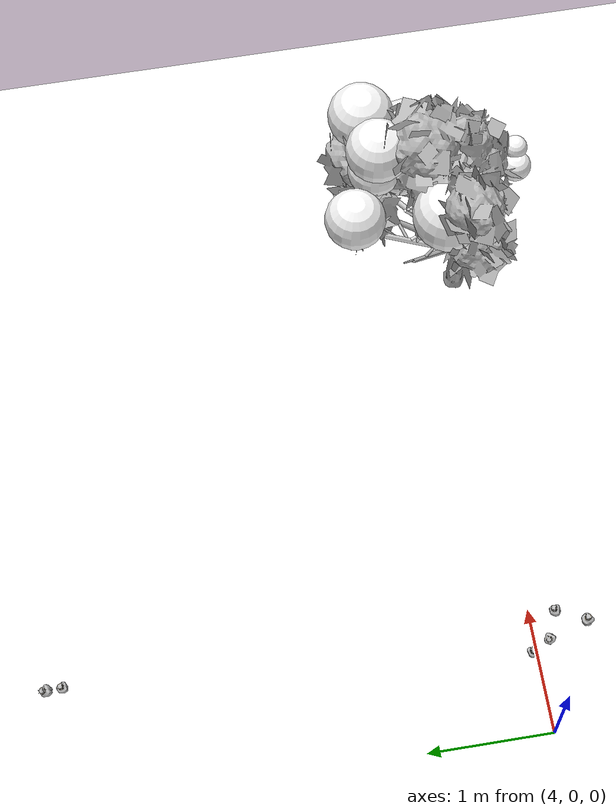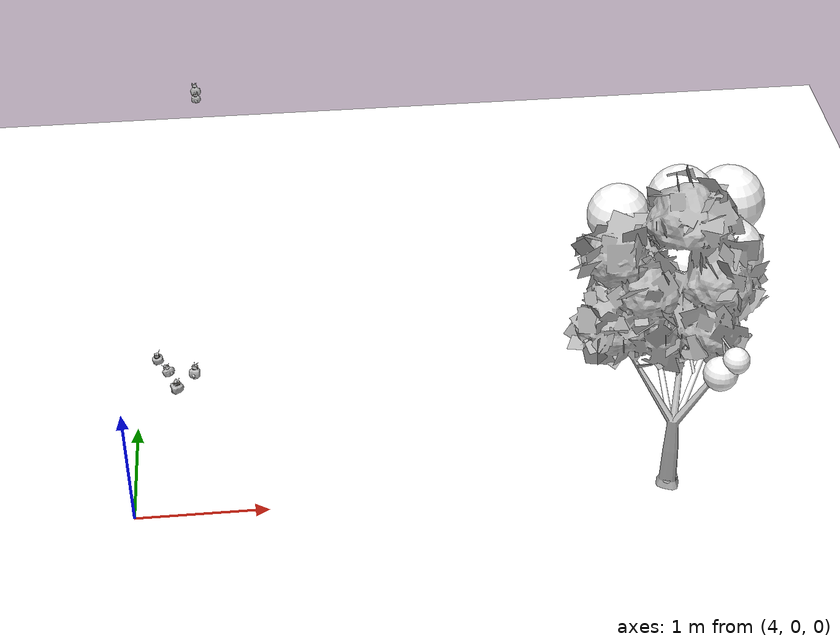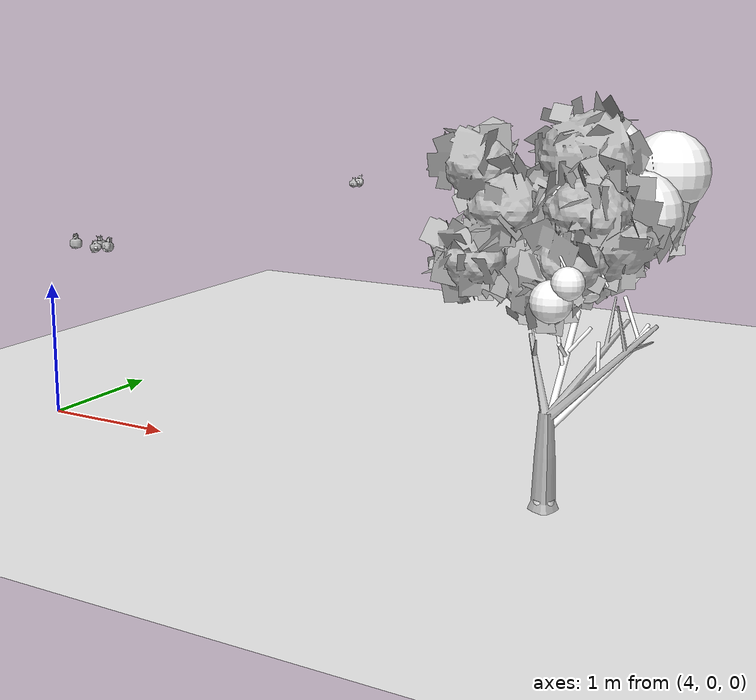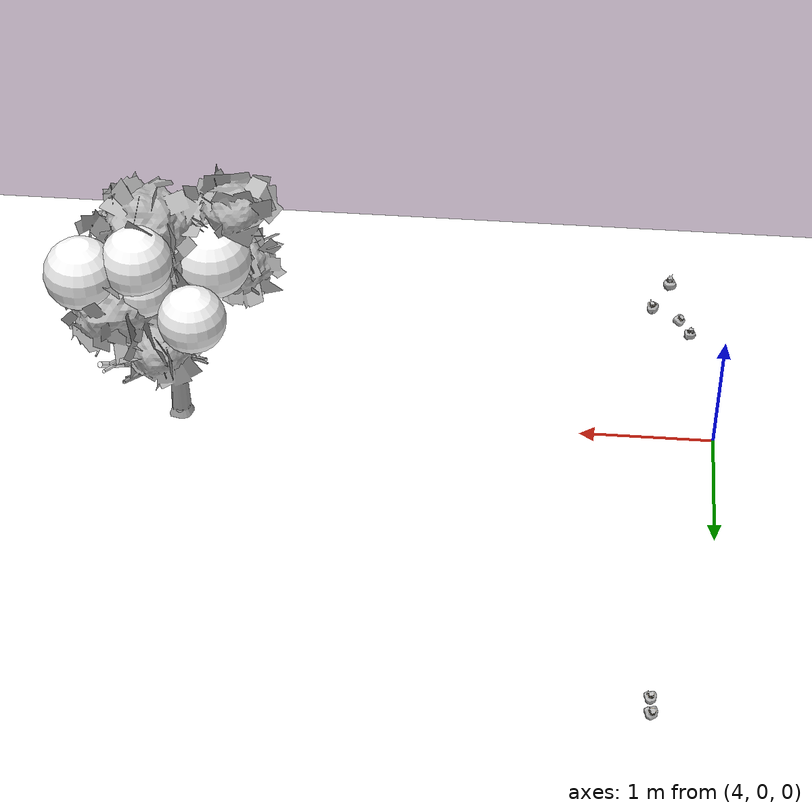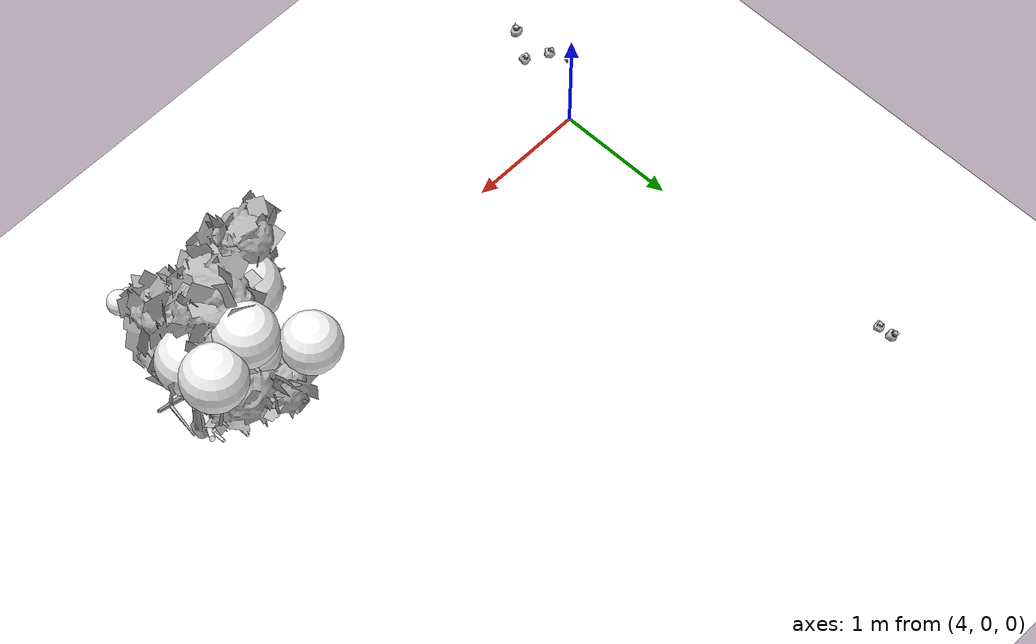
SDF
<sdf version="1.11">
 <world name="peach_orchard">
  <model name="ground">
   <static>true</static>
   <link name="link">
    <visual name="soil">
     <geometry><plane><normal>0 0 1</normal><size>32 22</size></plane></geometry>
     <material>
      <ambient>1 1 1 1</ambient>
      <diffuse>1 1 1 1</diffuse>
      <specular>0.1 0.1 0.1 1</specular>
      <pbr>
       <metal>
        <albedo_map>textures/soil_albedo.png</albedo_map>
        <normal_map type="tangent">textures/soil_normal.png</normal_map>
        <roughness>0.95</roughness>
        <metalness>0</metalness>
       </metal>
      </pbr>
     </material>
    </visual>
    <collision name="c_soil">
     <geometry><plane><normal>0 0 1</normal><size>32 22</size></plane></geometry>
    </collision>
   </link>
  </model>
  <model name="tree_r4_t3">
   <pose>8 0 0 0 0 0</pose>
   <static>true</static>
   <link name="link">
    <visual name="tree_mesh">
     <pose>0 0 0 0 0 -0.282203</pose>
     <geometry>
      <mesh><uri>model://peach_sim/meshes/peach_tree_b.glb</uri><scale>1.07662 1.07662 1.07662</scale></mesh>
     </geometry>
    </visual>
    <visual name="trunk_0">
     <pose>0 0 0.148337 0 0 0</pose>
     <geometry><cylinder><radius>0.0466655</radius><length>0.296674</length></cylinder></geometry>
     <material>
      <ambient>1 1 1 1</ambient>
      <diffuse>1 1 1 1</diffuse>
      <specular>0.1 0.1 0.1 1</specular>
      <pbr>
       <metal>
        <albedo_map>textures/bark_albedo.png</albedo_map>
        <normal_map type="tangent">textures/bark_normal.png</normal_map>
        <roughness>0.9</roughness>
        <metalness>0</metalness>
       </metal>
      </pbr>
     </material>
    </visual>
    <collision name="c_trunk_0">
     <pose>0 0 0.148337 0 0 0</pose>
     <geometry><cylinder><radius>0.0466655</radius><length>0.296674</length></cylinder></geometry>
    </collision>
    <visual name="trunk_1">
     <pose>0 0 0.41804 0 0 0</pose>
     <geometry><cylinder><radius>0.0335991</radius><length>0.242733</length></cylinder></geometry>
     <material>
      <ambient>1 1 1 1</ambient>
      <diffuse>1 1 1 1</diffuse>
      <specular>0.1 0.1 0.1 1</specular>
      <pbr>
       <metal>
        <albedo_map>textures/bark_albedo.png</albedo_map>
        <normal_map type="tangent">textures/bark_normal.png</normal_map>
        <roughness>0.9</roughness>
        <metalness>0</metalness>
       </metal>
      </pbr>
     </material>
    </visual>
    <collision name="c_trunk_1">
     <pose>0 0 0.41804 0 0 0</pose>
     <geometry><cylinder><radius>0.0335991</radius><length>0.242733</length></cylinder></geometry>
    </collision>
    <visual name="root_flare">
     <pose>0 0 0.035 0 0 0</pose>
     <geometry><cylinder><radius>0.0676649</radius><length>0.07</length></cylinder></geometry>
     <material>
      <ambient>1 1 1 1</ambient>
      <diffuse>1 1 1 1</diffuse>
      <specular>0.1 0.1 0.1 1</specular>
      <pbr>
       <metal>
        <albedo_map>textures/bark_albedo.png</albedo_map>
        <normal_map type="tangent">textures/bark_normal.png</normal_map>
        <roughness>0.95</roughness>
        <metalness>0</metalness>
       </metal>
      </pbr>
     </material>
    </visual>
    <visual name="scaffold_0">
     <pose>-0.0381805 0.345991 0.8023 0 0.849586 1.6807</pose>
     <geometry><cylinder><radius>0.022</radius><length>0.926998</length></cylinder></geometry>
     <material>
      <ambient>1 1 1 1</ambient>
      <diffuse>1 1 1 1</diffuse>
      <specular>0.1 0.1 0.1 1</specular>
      <pbr>
       <metal>
        <albedo_map>textures/bark_albedo.png</albedo_map>
        <normal_map type="tangent">textures/bark_normal.png</normal_map>
        <roughness>0.9</roughness>
        <metalness>0</metalness>
       </metal>
      </pbr>
     </material>
    </visual>
    <collision name="c_scaffold_0">
     <pose>-0.0381805 0.345991 0.8023 0 0.849586 1.6807</pose>
     <geometry><cylinder><radius>0.022</radius><length>0.926998</length></cylinder></geometry>
    </collision>
    <visual name="branchlet_0_0">
     <pose>0.0171226 0.478258 0.968105 0 0.734133 0.573194</pose>
     <geometry><cylinder><radius>0.012</radius><length>0.231852</length></cylinder></geometry>
     <material>
      <ambient>1 1 1 1</ambient>
      <diffuse>1 1 1 1</diffuse>
      <specular>0.1 0.1 0.1 1</specular>
      <pbr>
       <metal>
        <albedo_map>textures/bark_albedo.png</albedo_map>
        <normal_map type="tangent">textures/bark_normal.png</normal_map>
        <roughness>0.9</roughness>
        <metalness>0</metalness>
       </metal>
      </pbr>
     </material>
    </visual>
    <visual name="branchlet_0_1">
     <pose>-0.0594259 0.353149 0.93578 0 0.167105 -2.86666</pose>
     <geometry><cylinder><radius>0.012</radius><length>0.247849</length></cylinder></geometry>
     <material>
      <ambient>1 1 1 1</ambient>
      <diffuse>1 1 1 1</diffuse>
      <specular>0.1 0.1 0.1 1</specular>
      <pbr>
       <metal>
        <albedo_map>textures/bark_albedo.png</albedo_map>
        <normal_map type="tangent">textures/bark_normal.png</normal_map>
        <roughness>0.9</roughness>
        <metalness>0</metalness>
       </metal>
      </pbr>
     </material>
    </visual>
    <visual name="branchlet_0_2">
     <pose>-0.0321172 0.32171 0.934932 0 1.0265 -1.42856</pose>
     <geometry><cylinder><radius>0.012</radius><length>0.243287</length></cylinder></geometry>
     <material>
      <ambient>1 1 1 1</ambient>
      <diffuse>1 1 1 1</diffuse>
      <specular>0.1 0.1 0.1 1</specular>
      <pbr>
       <metal>
        <albedo_map>textures/bark_albedo.png</albedo_map>
        <normal_map type="tangent">textures/bark_normal.png</normal_map>
        <roughness>0.9</roughness>
        <metalness>0</metalness>
       </metal>
      </pbr>
     </material>
    </visual>
    <visual name="scaffold_1">
     <pose>0.214505 0.315752 0.776708 0 0.937155 0.974068</pose>
     <geometry><cylinder><radius>0.022</radius><length>0.947345</length></cylinder></geometry>
     <material>
      <ambient>1 1 1 1</ambient>
      <diffuse>1 1 1 1</diffuse>
      <specular>0.1 0.1 0.1 1</specular>
      <pbr>
       <metal>
        <albedo_map>textures/bark_albedo.png</albedo_map>
        <normal_map type="tangent">textures/bark_normal.png</normal_map>
        <roughness>0.9</roughness>
        <metalness>0</metalness>
       </metal>
      </pbr>
     </material>
    </visual>
    <collision name="c_scaffold_1">
     <pose>0.214505 0.315752 0.776708 0 0.937155 0.974068</pose>
     <geometry><cylinder><radius>0.022</radius><length>0.947345</length></cylinder></geometry>
    </collision>
    <visual name="branchlet_1_0">
     <pose>0.187394 0.365937 0.879965 0 0.512317 1.92926</pose>
     <geometry><cylinder><radius>0.012</radius><length>0.253</length></cylinder></geometry>
     <material>
      <ambient>1 1 1 1</ambient>
      <diffuse>1 1 1 1</diffuse>
      <specular>0.1 0.1 0.1 1</specular>
      <pbr>
       <metal>
        <albedo_map>textures/bark_albedo.png</albedo_map>
        <normal_map type="tangent">textures/bark_normal.png</normal_map>
        <roughness>0.9</roughness>
        <metalness>0</metalness>
       </metal>
      </pbr>
     </material>
    </visual>
    <visual name="branchlet_1_1">
     <pose>0.305001 0.635158 1.11366 0 0.725449 2.35673</pose>
     <geometry><cylinder><radius>0.012</radius><length>0.321067</length></cylinder></geometry>
     <material>
      <ambient>1 1 1 1</ambient>
      <diffuse>1 1 1 1</diffuse>
      <specular>0.1 0.1 0.1 1</specular>
      <pbr>
       <metal>
        <albedo_map>textures/bark_albedo.png</albedo_map>
        <normal_map type="tangent">textures/bark_normal.png</normal_map>
        <roughness>0.9</roughness>
        <metalness>0</metalness>
       </metal>
      </pbr>
     </material>
    </visual>
    <visual name="branchlet_1_2">
     <pose>0.366018 0.607568 1.00678 0 1.03691 1.34783</pose>
     <geometry><cylinder><radius>0.012</radius><length>0.245966</length></cylinder></geometry>
     <material>
      <ambient>1 1 1 1</ambient>
      <diffuse>1 1 1 1</diffuse>
      <specular>0.1 0.1 0.1 1</specular>
      <pbr>
       <metal>
        <albedo_map>textures/bark_albedo.png</albedo_map>
        <normal_map type="tangent">textures/bark_normal.png</normal_map>
        <roughness>0.9</roughness>
        <metalness>0</metalness>
       </metal>
      </pbr>
     </material>
    </visual>
    <visual name="canopy_0">
     <pose>0.0593341 0.238353 1.84808 0 0 0</pose>
     <geometry><sphere><radius>0.267931</radius></sphere></geometry>
     <material>
      <ambient>1 1 1 1</ambient>
      <diffuse>1 1 1 1</diffuse>
      <specular>0.1 0.1 0.1 1</specular>
      <pbr>
       <metal>
        <albedo_map>textures/leaf_albedo.png</albedo_map>
        <normal_map type="tangent">textures/leaf_normal.png</normal_map>
        <roughness>0.85</roughness>
        <metalness>0</metalness>
       </metal>
      </pbr>
     </material>
    </visual>
    <collision name="c_canopy_0">
     <pose>0.0593341 0.238353 1.84808 0 0 0</pose>
     <geometry><sphere><radius>0.267931</radius></sphere></geometry>
    </collision>
    <visual name="canopy_1">
     <pose>0.159435 0.311794 1.87262 0 0 0</pose>
     <geometry><sphere><radius>0.217455</radius></sphere></geometry>
     <material>
      <ambient>1 1 1 1</ambient>
      <diffuse>1 1 1 1</diffuse>
      <specular>0.1 0.1 0.1 1</specular>
      <pbr>
       <metal>
        <albedo_map>textures/leaf_albedo.png</albedo_map>
        <normal_map type="tangent">textures/leaf_normal.png</normal_map>
        <roughness>0.85</roughness>
        <metalness>0</metalness>
       </metal>
      </pbr>
     </material>
    </visual>
    <collision name="c_canopy_1">
     <pose>0.159435 0.311794 1.87262 0 0 0</pose>
     <geometry><sphere><radius>0.217455</radius></sphere></geometry>
    </collision>
    <visual name="canopy_2">
     <pose>-0.314593 0.93314 1.83114 0 0 0</pose>
     <geometry><sphere><radius>0.235199</radius></sphere></geometry>
     <material>
      <ambient>1 1 1 1</ambient>
      <diffuse>1 1 1 1</diffuse>
      <specular>0.1 0.1 0.1 1</specular>
      <pbr>
       <metal>
        <albedo_map>textures/leaf_albedo.png</albedo_map>
        <normal_map type="tangent">textures/leaf_normal.png</normal_map>
        <roughness>0.85</roughness>
        <metalness>0</metalness>
       </metal>
      </pbr>
     </material>
    </visual>
    <collision name="c_canopy_2">
     <pose>-0.314593 0.93314 1.83114 0 0 0</pose>
     <geometry><sphere><radius>0.235199</radius></sphere></geometry>
    </collision>
    <visual name="canopy_3">
     <pose>0.0724672 0.509236 1.78434 0 0 0</pose>
     <geometry><sphere><radius>0.19067</radius></sphere></geometry>
     <material>
      <ambient>1 1 1 1</ambient>
      <diffuse>1 1 1 1</diffuse>
      <specular>0.1 0.1 0.1 1</specular>
      <pbr>
       <metal>
        <albedo_map>textures/leaf_albedo.png</albedo_map>
        <normal_map type="tangent">textures/leaf_normal.png</normal_map>
        <roughness>0.85</roughness>
        <metalness>0</metalness>
       </metal>
      </pbr>
     </material>
    </visual>
    <visual name="canopy_4">
     <pose>-0.345611 0.20868 1.73606 0 0 0</pose>
     <geometry><sphere><radius>0.282821</radius></sphere></geometry>
     <material>
      <ambient>1 1 1 1</ambient>
      <diffuse>1 1 1 1</diffuse>
      <specular>0.1 0.1 0.1 1</specular>
      <pbr>
       <metal>
        <albedo_map>textures/leaf_albedo.png</albedo_map>
        <normal_map type="tangent">textures/leaf_normal.png</normal_map>
        <roughness>0.85</roughness>
        <metalness>0</metalness>
       </metal>
      </pbr>
     </material>
    </visual>
    <visual name="canopy_5">
     <pose>0.0528878 0.721756 1.89816 0 0 0</pose>
     <geometry><sphere><radius>0.207568</radius></sphere></geometry>
     <material>
      <ambient>1 1 1 1</ambient>
      <diffuse>1 1 1 1</diffuse>
      <specular>0.1 0.1 0.1 1</specular>
      <pbr>
       <metal>
        <albedo_map>textures/leaf_albedo.png</albedo_map>
        <normal_map type="tangent">textures/leaf_normal.png</normal_map>
        <roughness>0.85</roughness>
        <metalness>0</metalness>
       </metal>
      </pbr>
     </material>
    </visual>
    <visual name="canopy_6">
     <pose>0.082966 0.694865 2.1138 0 0 0</pose>
     <geometry><sphere><radius>0.24779</radius></sphere></geometry>
     <material>
      <ambient>1 1 1 1</ambient>
      <diffuse>1 1 1 1</diffuse>
      <specular>0.1 0.1 0.1 1</specular>
      <pbr>
       <metal>
        <albedo_map>textures/leaf_albedo.png</albedo_map>
        <normal_map type="tangent">textures/leaf_normal.png</normal_map>
        <roughness>0.85</roughness>
        <metalness>0</metalness>
       </metal>
      </pbr>
     </material>
    </visual>
    <visual name="canopy_7">
     <pose>0.387276 0.421543 1.81624 0 0 0</pose>
     <geometry><sphere><radius>0.261143</radius></sphere></geometry>
     <material>
      <ambient>1 1 1 1</ambient>
      <diffuse>1 1 1 1</diffuse>
      <specular>0.1 0.1 0.1 1</specular>
      <pbr>
       <metal>
        <albedo_map>textures/leaf_albedo.png</albedo_map>
        <normal_map type="tangent">textures/leaf_normal.png</normal_map>
        <roughness>0.85</roughness>
        <metalness>0</metalness>
       </metal>
      </pbr>
     </material>
    </visual>
    <visual name="canopy_8">
     <pose>0.231931 0.656732 1.63902 0 0 0</pose>
     <geometry><sphere><radius>0.180632</radius></sphere></geometry>
     <material>
      <ambient>1 1 1 1</ambient>
      <diffuse>1 1 1 1</diffuse>
      <specular>0.1 0.1 0.1 1</specular>
      <pbr>
       <metal>
        <albedo_map>textures/leaf_albedo.png</albedo_map>
        <normal_map type="tangent">textures/leaf_normal.png</normal_map>
        <roughness>0.85</roughness>
        <metalness>0</metalness>
       </metal>
      </pbr>
     </material>
    </visual>
    <visual name="canopy_9">
     <pose>0.456812 0.757319 2.03748 0 0 0</pose>
     <geometry><sphere><radius>0.255891</radius></sphere></geometry>
     <material>
      <ambient>1 1 1 1</ambient>
      <diffuse>1 1 1 1</diffuse>
      <specular>0.1 0.1 0.1 1</specular>
      <pbr>
       <metal>
        <albedo_map>textures/leaf_albedo.png</albedo_map>
        <normal_map type="tangent">textures/leaf_normal.png</normal_map>
        <roughness>0.85</roughness>
        <metalness>0</metalness>
       </metal>
      </pbr>
     </material>
    </visual>
    <visual name="foliage_0">
     <pose>0.242953 -0.0301388 1.43512 0 0 0</pose>
     <geometry><sphere><radius>0.0971273</radius></sphere></geometry>
     <material>
      <ambient>1 1 1 1</ambient>
      <diffuse>1 1 1 1</diffuse>
      <specular>0.1 0.1 0.1 1</specular>
      <pbr>
       <metal>
        <albedo_map>textures/leaf_albedo.png</albedo_map>
        <normal_map type="tangent">textures/leaf_normal.png</normal_map>
        <roughness>0.85</roughness>
        <metalness>0</metalness>
       </metal>
      </pbr>
     </material>
    </visual>
    <visual name="foliage_4">
     <pose>0.282198 -0.457183 1.53155 0 0 0</pose>
     <geometry><sphere><radius>0.0956305</radius></sphere></geometry>
     <material>
      <ambient>1 1 1 1</ambient>
      <diffuse>1 1 1 1</diffuse>
      <specular>0.1 0.1 0.1 1</specular>
      <pbr>
       <metal>
        <albedo_map>textures/leaf_albedo.png</albedo_map>
        <normal_map type="tangent">textures/leaf_normal.png</normal_map>
        <roughness>0.85</roughness>
        <metalness>0</metalness>
       </metal>
      </pbr>
     </material>
    </visual>
    <visual name="foliage_8">
     <pose>0.183184 -0.449271 1.41763 0 0 0</pose>
     <geometry><sphere><radius>0.122654</radius></sphere></geometry>
     <material>
      <ambient>1 1 1 1</ambient>
      <diffuse>1 1 1 1</diffuse>
      <specular>0.1 0.1 0.1 1</specular>
      <pbr>
       <metal>
        <albedo_map>textures/leaf_albedo.png</albedo_map>
        <normal_map type="tangent">textures/leaf_normal.png</normal_map>
        <roughness>0.85</roughness>
        <metalness>0</metalness>
       </metal>
      </pbr>
     </material>
    </visual>
    <visual name="twig_0">
     <pose>0.217808 -0.055507 1.47371 0 0.353709 -2.5047</pose>
     <geometry><cylinder><radius>0.007</radius><length>0.116066</length></cylinder></geometry>
     <material>
      <ambient>1 1 1 1</ambient>
      <diffuse>1 1 1 1</diffuse>
      <specular>0.1 0.1 0.1 1</specular>
      <pbr>
       <metal>
        <albedo_map>textures/bark_albedo.png</albedo_map>
        <normal_map type="tangent">textures/bark_normal.png</normal_map>
        <roughness>0.9</roughness>
        <metalness>0</metalness>
       </metal>
      </pbr>
     </material>
    </visual>
    <visual name="twig_1">
     <pose>0.17612 -0.0914159 1.53529 0 0.715833 2.86992</pose>
     <geometry><cylinder><radius>0.007</radius><length>0.139472</length></cylinder></geometry>
     <material>
      <ambient>1 1 1 1</ambient>
      <diffuse>1 1 1 1</diffuse>
      <specular>0.1 0.1 0.1 1</specular>
      <pbr>
       <metal>
        <albedo_map>textures/bark_albedo.png</albedo_map>
        <normal_map type="tangent">textures/bark_normal.png</normal_map>
        <roughness>0.9</roughness>
        <metalness>0</metalness>
       </metal>
      </pbr>
     </material>
    </visual>
    <visual name="twig_2">
     <pose>0.158935 -0.252881 1.56254 0 0.238891 2.87703</pose>
     <geometry><cylinder><radius>0.007</radius><length>0.117936</length></cylinder></geometry>
     <material>
      <ambient>1 1 1 1</ambient>
      <diffuse>1 1 1 1</diffuse>
      <specular>0.1 0.1 0.1 1</specular>
      <pbr>
       <metal>
        <albedo_map>textures/bark_albedo.png</albedo_map>
        <normal_map type="tangent">textures/bark_normal.png</normal_map>
        <roughness>0.9</roughness>
        <metalness>0</metalness>
       </metal>
      </pbr>
     </material>
    </visual>
    <visual name="twig_3">
     <pose>0.255272 -0.343282 1.59933 0 0.585012 -3.01449</pose>
     <geometry><cylinder><radius>0.007</radius><length>0.207706</length></cylinder></geometry>
     <material>
      <ambient>1 1 1 1</ambient>
      <diffuse>1 1 1 1</diffuse>
      <specular>0.1 0.1 0.1 1</specular>
      <pbr>
       <metal>
        <albedo_map>textures/bark_albedo.png</albedo_map>
        <normal_map type="tangent">textures/bark_normal.png</normal_map>
        <roughness>0.9</roughness>
        <metalness>0</metalness>
       </metal>
      </pbr>
     </material>
    </visual>
    <visual name="twig_4">
     <pose>0.238931 -0.375437 1.59617 0 0.634986 2.79122</pose>
     <geometry><cylinder><radius>0.007</radius><length>0.166042</length></cylinder></geometry>
     <material>
      <ambient>1 1 1 1</ambient>
      <diffuse>1 1 1 1</diffuse>
      <specular>0.1 0.1 0.1 1</specular>
      <pbr>
       <metal>
        <albedo_map>textures/bark_albedo.png</albedo_map>
        <normal_map type="tangent">textures/bark_normal.png</normal_map>
        <roughness>0.9</roughness>
        <metalness>0</metalness>
       </metal>
      </pbr>
     </material>
    </visual>
    <visual name="twig_5">
     <pose>0.35516 -0.133442 1.5495 0 0.568934 2.95558</pose>
     <geometry><cylinder><radius>0.007</radius><length>0.187828</length></cylinder></geometry>
     <material>
      <ambient>1 1 1 1</ambient>
      <diffuse>1 1 1 1</diffuse>
      <specular>0.1 0.1 0.1 1</specular>
      <pbr>
       <metal>
        <albedo_map>textures/bark_albedo.png</albedo_map>
        <normal_map type="tangent">textures/bark_normal.png</normal_map>
        <roughness>0.9</roughness>
        <metalness>0</metalness>
       </metal>
      </pbr>
     </material>
    </visual>
    <visual name="twig_6">
     <pose>0.263028 -0.186472 1.62021 0 0.314915 2.2278</pose>
     <geometry><cylinder><radius>0.007</radius><length>0.203874</length></cylinder></geometry>
     <material>
      <ambient>1 1 1 1</ambient>
      <diffuse>1 1 1 1</diffuse>
      <specular>0.1 0.1 0.1 1</specular>
      <pbr>
       <metal>
        <albedo_map>textures/bark_albedo.png</albedo_map>
        <normal_map type="tangent">textures/bark_normal.png</normal_map>
        <roughness>0.9</roughness>
        <metalness>0</metalness>
       </metal>
      </pbr>
     </material>
    </visual>
    <visual name="twig_7">
     <pose>0.28166 -0.281767 1.57656 0 0.533472 3.02448</pose>
     <geometry><cylinder><radius>0.007</radius><length>0.153545</length></cylinder></geometry>
     <material>
      <ambient>1 1 1 1</ambient>
      <diffuse>1 1 1 1</diffuse>
      <specular>0.1 0.1 0.1 1</specular>
      <pbr>
       <metal>
        <albedo_map>textures/bark_albedo.png</albedo_map>
        <normal_map type="tangent">textures/bark_normal.png</normal_map>
        <roughness>0.9</roughness>
        <metalness>0</metalness>
       </metal>
      </pbr>
     </material>
    </visual>
    <visual name="twig_8">
     <pose>0.205864 -0.359158 1.61445 0 0.2557 2.11211</pose>
     <geometry><cylinder><radius>0.007</radius><length>0.184605</length></cylinder></geometry>
     <material>
      <ambient>1 1 1 1</ambient>
      <diffuse>1 1 1 1</diffuse>
      <specular>0.1 0.1 0.1 1</specular>
      <pbr>
       <metal>
        <albedo_map>textures/bark_albedo.png</albedo_map>
        <normal_map type="tangent">textures/bark_normal.png</normal_map>
        <roughness>0.9</roughness>
        <metalness>0</metalness>
       </metal>
      </pbr>
     </material>
    </visual>
   </link>
  </model>
  <model name="peach_tree_r3_t3_03">
   <pose>4.43067 -0.182432 1.34806 0 0.0129971 0.357753</pose>
   <static>true</static>
   <link name="bag">
    <visual name="bag_mesh">
     <pose>0 0 0.0466907 0 0 0</pose>
     <geometry>
      <mesh><uri>model://peach_sim/meshes/bagged_peach.glb</uri><scale>1.07636 1.22549 1.06115</scale></mesh>
     </geometry>
    </visual>
    <visual name="body">
     <pose>0 0 0.0286907 0 0 0</pose>
     <geometry><ellipsoid><radii>0.0403634 0.0318628 0.0309859</radii></ellipsoid></geometry>
     <material>
      <ambient>1 1 1 1</ambient>
      <diffuse>1 1 1 1</diffuse>
      <specular>0.1 0.1 0.1 1</specular>
      <pbr>
       <metal>
        <albedo_map>textures/paper_bag_albedo.png</albedo_map>
        <normal_map type="tangent">textures/paper_bag_normal.png</normal_map>
        <roughness>0.72</roughness>
        <metalness>0</metalness>
       </metal>
      </pbr>
     </material>
    </visual>
    <visual name="bottom_fold">
     <pose>0 0 0.012 0 0 0.35</pose>
     <geometry><box><size>0.0625632 0.0366422 0.022</size></box></geometry>
     <material>
      <ambient>1 1 1 1</ambient>
      <diffuse>1 1 1 1</diffuse>
      <specular>0.1 0.1 0.1 1</specular>
      <pbr>
       <metal>
        <albedo_map>textures/paper_bag_albedo.png</albedo_map>
        <normal_map type="tangent">textures/paper_bag_normal.png</normal_map>
        <roughness>0.8</roughness>
        <metalness>0</metalness>
       </metal>
      </pbr>
     </material>
    </visual>
    <visual name="fruit">
     <pose>0 0 0.0175619 0 0 0</pose>
     <geometry><sphere><radius>0.0245043</radius></sphere></geometry>
     <material>
      <ambient>1 1 1 1</ambient>
      <diffuse>1 1 1 1</diffuse>
      <specular>0.1 0.1 0.1 1</specular>
      <pbr>
       <metal>
        <albedo_map>textures/fruit_skin_albedo.png</albedo_map>
        <normal_map type="tangent">textures/fruit_skin_normal.png</normal_map>
        <roughness>0.55</roughness>
        <metalness>0</metalness>
       </metal>
      </pbr>
     </material>
    </visual>
    <visual name="neck">
     <pose>0 0 0.0663813 0 0 0</pose>
     <geometry><cylinder><radius>0.013</radius><length>0.018</length></cylinder></geometry>
     <material>
      <ambient>1 1 1 1</ambient>
      <diffuse>1 1 1 1</diffuse>
      <specular>0.1 0.1 0.1 1</specular>
      <pbr>
       <metal>
        <albedo_map>textures/paper_bag_albedo.png</albedo_map>
        <normal_map type="tangent">textures/paper_bag_normal.png</normal_map>
        <roughness>0.75</roughness>
        <metalness>0</metalness>
       </metal>
      </pbr>
     </material>
    </visual>
    <visual name="gather">
     <pose>0 0 0.0473813 0 0 0</pose>
     <geometry><cylinder><radius>0.019</radius><length>0.02</length></cylinder></geometry>
     <material>
      <ambient>1 1 1 1</ambient>
      <diffuse>1 1 1 1</diffuse>
      <specular>0.1 0.1 0.1 1</specular>
      <pbr>
       <metal>
        <albedo_map>textures/paper_bag_albedo.png</albedo_map>
        <normal_map type="tangent">textures/paper_bag_normal.png</normal_map>
        <roughness>0.8</roughness>
        <metalness>0</metalness>
       </metal>
      </pbr>
     </material>
    </visual>
    <visual name="inner_paper">
     <pose>0 0 0.0713813 0 0 0</pose>
     <geometry><cylinder><radius>0.01</radius><length>0.008</length></cylinder></geometry>
     <material>
      <ambient>0.180392 0.14902 0.133333 1</ambient>
      <diffuse>0.180392 0.14902 0.133333 1</diffuse>
      <specular>0.1 0.1 0.1 1</specular>
     </material>
    </visual>
    <visual name="wire_0">
     <pose>0 0 0.0613813 0 0 0</pose>
     <geometry><cylinder><radius>0.0205</radius><length>0.0035</length></cylinder></geometry>
     <material>
      <ambient>0.25 0.25 0.25 1</ambient>
      <diffuse>0.25 0.25 0.25 1</diffuse>
      <specular>0.1 0.1 0.1 1</specular>
     </material>
    </visual>
    <visual name="wire_1">
     <pose>0 0 0.0683813 0 0 0</pose>
     <geometry><cylinder><radius>0.0205</radius><length>0.0035</length></cylinder></geometry>
     <material>
      <ambient>0.25 0.25 0.25 1</ambient>
      <diffuse>0.25 0.25 0.25 1</diffuse>
      <specular>0.1 0.1 0.1 1</specular>
     </material>
    </visual>
    <visual name="wire_tail">
     <pose>0.01 0 0.0693813 0 0.521618 0</pose>
     <geometry><cylinder><radius>0.0012</radius><length>0.026</length></cylinder></geometry>
     <material>
      <ambient>0.25 0.25 0.25 1</ambient>
      <diffuse>0.25 0.25 0.25 1</diffuse>
      <specular>0.1 0.1 0.1 1</specular>
     </material>
    </visual>
    <collision name="c_body">
     <pose>0 0 0.0286907 0 0 0</pose>
     <geometry><cylinder><radius>0.0403634</radius><length>0.0573813</length></cylinder></geometry>
    </collision>
   </link>
  </model>
  <model name="peach_tree_r3_t3_04">
   <pose>4.54825 0.0152518 1.3024 0 0.244039 1.37547</pose>
   <static>true</static>
   <link name="bag">
    <visual name="bag_mesh">
     <pose>0 0 0.0467991 0 0 0</pose>
     <geometry>
      <mesh><uri>model://peach_sim/meshes/bagged_peach.glb</uri><scale>0.986519 1.16793 1.06361</scale></mesh>
     </geometry>
    </visual>
    <visual name="body">
     <pose>0 0 0.0287991 0 0 0</pose>
     <geometry><ellipsoid><radii>0.0369945 0.0303662 0.031103</radii></ellipsoid></geometry>
     <material>
      <ambient>1 1 1 1</ambient>
      <diffuse>1 1 1 1</diffuse>
      <specular>0.1 0.1 0.1 1</specular>
      <pbr>
       <metal>
        <albedo_map>textures/paper_bag_albedo.png</albedo_map>
        <normal_map type="tangent">textures/paper_bag_normal.png</normal_map>
        <roughness>0.72</roughness>
        <metalness>0</metalness>
       </metal>
      </pbr>
     </material>
    </visual>
    <visual name="bottom_fold">
     <pose>0 0 0.012 0 0 0.35</pose>
     <geometry><box><size>0.0573414 0.0349211 0.022</size></box></geometry>
     <material>
      <ambient>1 1 1 1</ambient>
      <diffuse>1 1 1 1</diffuse>
      <specular>0.1 0.1 0.1 1</specular>
      <pbr>
       <metal>
        <albedo_map>textures/paper_bag_albedo.png</albedo_map>
        <normal_map type="tangent">textures/paper_bag_normal.png</normal_map>
        <roughness>0.8</roughness>
        <metalness>0</metalness>
       </metal>
      </pbr>
     </material>
    </visual>
    <visual name="fruit">
     <pose>0 0 0.0200618 0 0 0</pose>
     <geometry><sphere><radius>0.0271043</radius></sphere></geometry>
     <material>
      <ambient>1 1 1 1</ambient>
      <diffuse>1 1 1 1</diffuse>
      <specular>0.1 0.1 0.1 1</specular>
      <pbr>
       <metal>
        <albedo_map>textures/fruit_skin_albedo.png</albedo_map>
        <normal_map type="tangent">textures/fruit_skin_normal.png</normal_map>
        <roughness>0.55</roughness>
        <metalness>0</metalness>
       </metal>
      </pbr>
     </material>
    </visual>
    <visual name="neck">
     <pose>0 0 0.0665981 0 0 0</pose>
     <geometry><cylinder><radius>0.013</radius><length>0.018</length></cylinder></geometry>
     <material>
      <ambient>1 1 1 1</ambient>
      <diffuse>1 1 1 1</diffuse>
      <specular>0.1 0.1 0.1 1</specular>
      <pbr>
       <metal>
        <albedo_map>textures/paper_bag_albedo.png</albedo_map>
        <normal_map type="tangent">textures/paper_bag_normal.png</normal_map>
        <roughness>0.75</roughness>
        <metalness>0</metalness>
       </metal>
      </pbr>
     </material>
    </visual>
    <visual name="gather">
     <pose>0 0 0.0475981 0 0 0</pose>
     <geometry><cylinder><radius>0.019</radius><length>0.02</length></cylinder></geometry>
     <material>
      <ambient>1 1 1 1</ambient>
      <diffuse>1 1 1 1</diffuse>
      <specular>0.1 0.1 0.1 1</specular>
      <pbr>
       <metal>
        <albedo_map>textures/paper_bag_albedo.png</albedo_map>
        <normal_map type="tangent">textures/paper_bag_normal.png</normal_map>
        <roughness>0.8</roughness>
        <metalness>0</metalness>
       </metal>
      </pbr>
     </material>
    </visual>
    <visual name="inner_paper">
     <pose>0 0 0.0715981 0 0 0</pose>
     <geometry><cylinder><radius>0.01</radius><length>0.008</length></cylinder></geometry>
     <material>
      <ambient>0.180392 0.14902 0.133333 1</ambient>
      <diffuse>0.180392 0.14902 0.133333 1</diffuse>
      <specular>0.1 0.1 0.1 1</specular>
     </material>
    </visual>
    <visual name="wire_0">
     <pose>0 0 0.0615981 0 0 0</pose>
     <geometry><cylinder><radius>0.0205</radius><length>0.0035</length></cylinder></geometry>
     <material>
      <ambient>0.25 0.25 0.25 1</ambient>
      <diffuse>0.25 0.25 0.25 1</diffuse>
      <specular>0.1 0.1 0.1 1</specular>
     </material>
    </visual>
    <visual name="wire_1">
     <pose>0 0 0.0685981 0 0 0</pose>
     <geometry><cylinder><radius>0.0205</radius><length>0.0035</length></cylinder></geometry>
     <material>
      <ambient>0.25 0.25 0.25 1</ambient>
      <diffuse>0.25 0.25 0.25 1</diffuse>
      <specular>0.1 0.1 0.1 1</specular>
     </material>
    </visual>
    <visual name="wire_tail">
     <pose>0.01 0 0.0695981 0 0.521618 0</pose>
     <geometry><cylinder><radius>0.0012</radius><length>0.026</length></cylinder></geometry>
     <material>
      <ambient>0.25 0.25 0.25 1</ambient>
      <diffuse>0.25 0.25 0.25 1</diffuse>
      <specular>0.1 0.1 0.1 1</specular>
     </material>
    </visual>
    <collision name="c_body">
     <pose>0 0 0.0287991 0 0 0</pose>
     <geometry><cylinder><radius>0.0369945</radius><length>0.0575981</length></cylinder></geometry>
    </collision>
   </link>
  </model>
  <model name="peach_tree_r3_t3_05">
   <pose>4.3696 0.0919468 1.27303 0 0.449292 2.48428</pose>
   <static>true</static>
   <link name="bag">
    <visual name="bag_mesh">
     <pose>0 0 0.0387336 0 0 0</pose>
     <geometry>
      <mesh><uri>model://peach_sim/meshes/bagged_peach.glb</uri><scale>0.992042 1.15734 0.880309</scale></mesh>
     </geometry>
    </visual>
    <visual name="body">
     <pose>0 0 0.0207336 0 0 0</pose>
     <geometry><ellipsoid><radii>0.0372016 0.0300909 0.0223923</radii></ellipsoid></geometry>
     <material>
      <ambient>1 1 1 1</ambient>
      <diffuse>1 1 1 1</diffuse>
      <specular>0.1 0.1 0.1 1</specular>
      <pbr>
       <metal>
        <albedo_map>textures/paper_bag_albedo.png</albedo_map>
        <normal_map type="tangent">textures/paper_bag_normal.png</normal_map>
        <roughness>0.72</roughness>
        <metalness>0</metalness>
       </metal>
      </pbr>
     </material>
    </visual>
    <visual name="bottom_fold">
     <pose>0 0 0.012 0 0 0.35</pose>
     <geometry><box><size>0.0576624 0.0346045 0.022</size></box></geometry>
     <material>
      <ambient>1 1 1 1</ambient>
      <diffuse>1 1 1 1</diffuse>
      <specular>0.1 0.1 0.1 1</specular>
      <pbr>
       <metal>
        <albedo_map>textures/paper_bag_albedo.png</albedo_map>
        <normal_map type="tangent">textures/paper_bag_normal.png</normal_map>
        <roughness>0.8</roughness>
        <metalness>0</metalness>
       </metal>
      </pbr>
     </material>
    </visual>
    <visual name="fruit">
     <pose>0 0 0.0207075 0 0 0</pose>
     <geometry><sphere><radius>0.0277758</radius></sphere></geometry>
     <material>
      <ambient>1 1 1 1</ambient>
      <diffuse>1 1 1 1</diffuse>
      <specular>0.1 0.1 0.1 1</specular>
      <pbr>
       <metal>
        <albedo_map>textures/fruit_skin_albedo.png</albedo_map>
        <normal_map type="tangent">textures/fruit_skin_normal.png</normal_map>
        <roughness>0.55</roughness>
        <metalness>0</metalness>
       </metal>
      </pbr>
     </material>
    </visual>
    <visual name="neck">
     <pose>0 0 0.0504672 0 0 0</pose>
     <geometry><cylinder><radius>0.013</radius><length>0.018</length></cylinder></geometry>
     <material>
      <ambient>1 1 1 1</ambient>
      <diffuse>1 1 1 1</diffuse>
      <specular>0.1 0.1 0.1 1</specular>
      <pbr>
       <metal>
        <albedo_map>textures/paper_bag_albedo.png</albedo_map>
        <normal_map type="tangent">textures/paper_bag_normal.png</normal_map>
        <roughness>0.75</roughness>
        <metalness>0</metalness>
       </metal>
      </pbr>
     </material>
    </visual>
    <visual name="gather">
     <pose>0 0 0.0314672 0 0 0</pose>
     <geometry><cylinder><radius>0.019</radius><length>0.02</length></cylinder></geometry>
     <material>
      <ambient>1 1 1 1</ambient>
      <diffuse>1 1 1 1</diffuse>
      <specular>0.1 0.1 0.1 1</specular>
      <pbr>
       <metal>
        <albedo_map>textures/paper_bag_albedo.png</albedo_map>
        <normal_map type="tangent">textures/paper_bag_normal.png</normal_map>
        <roughness>0.8</roughness>
        <metalness>0</metalness>
       </metal>
      </pbr>
     </material>
    </visual>
    <visual name="inner_paper">
     <pose>0 0 0.0554672 0 0 0</pose>
     <geometry><cylinder><radius>0.01</radius><length>0.008</length></cylinder></geometry>
     <material>
      <ambient>0.180392 0.14902 0.133333 1</ambient>
      <diffuse>0.180392 0.14902 0.133333 1</diffuse>
      <specular>0.1 0.1 0.1 1</specular>
     </material>
    </visual>
    <visual name="wire_0">
     <pose>0 0 0.0454672 0 0 0</pose>
     <geometry><cylinder><radius>0.0205</radius><length>0.0035</length></cylinder></geometry>
     <material>
      <ambient>0.25 0.25 0.25 1</ambient>
      <diffuse>0.25 0.25 0.25 1</diffuse>
      <specular>0.1 0.1 0.1 1</specular>
     </material>
    </visual>
    <visual name="wire_1">
     <pose>0 0 0.0524672 0 0 0</pose>
     <geometry><cylinder><radius>0.0205</radius><length>0.0035</length></cylinder></geometry>
     <material>
      <ambient>0.25 0.25 0.25 1</ambient>
      <diffuse>0.25 0.25 0.25 1</diffuse>
      <specular>0.1 0.1 0.1 1</specular>
     </material>
    </visual>
    <visual name="wire_tail">
     <pose>0.01 0 0.0534672 0 0.521618 0</pose>
     <geometry><cylinder><radius>0.0012</radius><length>0.026</length></cylinder></geometry>
     <material>
      <ambient>0.25 0.25 0.25 1</ambient>
      <diffuse>0.25 0.25 0.25 1</diffuse>
      <specular>0.1 0.1 0.1 1</specular>
     </material>
    </visual>
    <collision name="c_body">
     <pose>0 0 0.0207336 0 0 0</pose>
     <geometry><cylinder><radius>0.0372016</radius><length>0.0414672</length></cylinder></geometry>
    </collision>
   </link>
  </model>
  <model name="peach_tree_r3_t3_06">
   <pose>4.28869 0.24221 1.27 0 0.122647 -3.00953</pose>
   <static>true</static>
   <link name="bag">
    <visual name="bag_mesh">
     <pose>0 0 0.0403163 0 0 -0</pose>
     <geometry>
      <mesh><uri>model://peach_sim/meshes/bagged_peach.glb</uri><scale>0.981627 1.04778 0.91628</scale></mesh>
     </geometry>
    </visual>
    <visual name="body">
     <pose>0 0 0.0223163 0 0 0</pose>
     <geometry><ellipsoid><radii>0.036811 0.0272423 0.0241016</radii></ellipsoid></geometry>
     <material>
      <ambient>1 1 1 1</ambient>
      <diffuse>1 1 1 1</diffuse>
      <specular>0.1 0.1 0.1 1</specular>
      <pbr>
       <metal>
        <albedo_map>textures/paper_bag_albedo.png</albedo_map>
        <normal_map type="tangent">textures/paper_bag_normal.png</normal_map>
        <roughness>0.72</roughness>
        <metalness>0</metalness>
       </metal>
      </pbr>
     </material>
    </visual>
    <visual name="bottom_fold">
     <pose>0 0 0.012 0 0 0.35</pose>
     <geometry><box><size>0.0570571 0.0313286 0.022</size></box></geometry>
     <material>
      <ambient>1 1 1 1</ambient>
      <diffuse>1 1 1 1</diffuse>
      <specular>0.1 0.1 0.1 1</specular>
      <pbr>
       <metal>
        <albedo_map>textures/paper_bag_albedo.png</albedo_map>
        <normal_map type="tangent">textures/paper_bag_normal.png</normal_map>
        <roughness>0.8</roughness>
        <metalness>0</metalness>
       </metal>
      </pbr>
     </material>
    </visual>
    <visual name="fruit">
     <pose>0 0 0.0178764 0 0 0</pose>
     <geometry><sphere><radius>0.0248314</radius></sphere></geometry>
     <material>
      <ambient>1 1 1 1</ambient>
      <diffuse>1 1 1 1</diffuse>
      <specular>0.1 0.1 0.1 1</specular>
      <pbr>
       <metal>
        <albedo_map>textures/fruit_skin_albedo.png</albedo_map>
        <normal_map type="tangent">textures/fruit_skin_normal.png</normal_map>
        <roughness>0.55</roughness>
        <metalness>0</metalness>
       </metal>
      </pbr>
     </material>
    </visual>
    <visual name="neck">
     <pose>0 0 0.0536327 0 0 0</pose>
     <geometry><cylinder><radius>0.013</radius><length>0.018</length></cylinder></geometry>
     <material>
      <ambient>1 1 1 1</ambient>
      <diffuse>1 1 1 1</diffuse>
      <specular>0.1 0.1 0.1 1</specular>
      <pbr>
       <metal>
        <albedo_map>textures/paper_bag_albedo.png</albedo_map>
        <normal_map type="tangent">textures/paper_bag_normal.png</normal_map>
        <roughness>0.75</roughness>
        <metalness>0</metalness>
       </metal>
      </pbr>
     </material>
    </visual>
    <visual name="gather">
     <pose>0 0 0.0346327 0 0 0</pose>
     <geometry><cylinder><radius>0.019</radius><length>0.02</length></cylinder></geometry>
     <material>
      <ambient>1 1 1 1</ambient>
      <diffuse>1 1 1 1</diffuse>
      <specular>0.1 0.1 0.1 1</specular>
      <pbr>
       <metal>
        <albedo_map>textures/paper_bag_albedo.png</albedo_map>
        <normal_map type="tangent">textures/paper_bag_normal.png</normal_map>
        <roughness>0.8</roughness>
        <metalness>0</metalness>
       </metal>
      </pbr>
     </material>
    </visual>
    <visual name="inner_paper">
     <pose>0 0 0.0586327 0 0 0</pose>
     <geometry><cylinder><radius>0.01</radius><length>0.008</length></cylinder></geometry>
     <material>
      <ambient>0.180392 0.14902 0.133333 1</ambient>
      <diffuse>0.180392 0.14902 0.133333 1</diffuse>
      <specular>0.1 0.1 0.1 1</specular>
     </material>
    </visual>
    <visual name="wire_0">
     <pose>0 0 0.0486327 0 0 0</pose>
     <geometry><cylinder><radius>0.0205</radius><length>0.0035</length></cylinder></geometry>
     <material>
      <ambient>0.25 0.25 0.25 1</ambient>
      <diffuse>0.25 0.25 0.25 1</diffuse>
      <specular>0.1 0.1 0.1 1</specular>
     </material>
    </visual>
    <visual name="wire_1">
     <pose>0 0 0.0556327 0 0 0</pose>
     <geometry><cylinder><radius>0.0205</radius><length>0.0035</length></cylinder></geometry>
     <material>
      <ambient>0.25 0.25 0.25 1</ambient>
      <diffuse>0.25 0.25 0.25 1</diffuse>
      <specular>0.1 0.1 0.1 1</specular>
     </material>
    </visual>
    <visual name="wire_tail">
     <pose>0.01 0 0.0566327 0 0.521618 0</pose>
     <geometry><cylinder><radius>0.0012</radius><length>0.026</length></cylinder></geometry>
     <material>
      <ambient>0.25 0.25 0.25 1</ambient>
      <diffuse>0.25 0.25 0.25 1</diffuse>
      <specular>0.1 0.1 0.1 1</specular>
     </material>
    </visual>
    <collision name="c_body">
     <pose>0 0 0.0223163 0 0 0</pose>
     <geometry><cylinder><radius>0.036811</radius><length>0.0446327</length></cylinder></geometry>
    </collision>
   </link>
  </model>
  <model name="peach_tree_r3_t5_02">
   <pose>4.55 3.67578 1.37862 0 0.504201 1.87395</pose>
   <static>true</static>
   <link name="bag">
    <visual name="bag_mesh">
     <pose>0 0 0.0490301 0 0 0</pose>
     <geometry>
      <mesh><uri>model://peach_sim/meshes/bagged_peach.glb</uri><scale>1.01901 1.19352 1.11432</scale></mesh>
     </geometry>
    </visual>
    <visual name="body">
     <pose>0 0 0.0310301 0 0 0</pose>
     <geometry><ellipsoid><radii>0.0382128 0.0310316 0.0335125</radii></ellipsoid></geometry>
     <material>
      <ambient>1 1 1 1</ambient>
      <diffuse>1 1 1 1</diffuse>
      <specular>0.1 0.1 0.1 1</specular>
      <pbr>
       <metal>
        <albedo_map>textures/paper_bag_albedo.png</albedo_map>
        <normal_map type="tangent">textures/paper_bag_normal.png</normal_map>
        <roughness>0.72</roughness>
        <metalness>0</metalness>
       </metal>
      </pbr>
     </material>
    </visual>
    <visual name="bottom_fold">
     <pose>0 0 0.012 0 0 0.35</pose>
     <geometry><box><size>0.0592299 0.0356864 0.022</size></box></geometry>
     <material>
      <ambient>1 1 1 1</ambient>
      <diffuse>1 1 1 1</diffuse>
      <specular>0.1 0.1 0.1 1</specular>
      <pbr>
       <metal>
        <albedo_map>textures/paper_bag_albedo.png</albedo_map>
        <normal_map type="tangent">textures/paper_bag_normal.png</normal_map>
        <roughness>0.8</roughness>
        <metalness>0</metalness>
       </metal>
      </pbr>
     </material>
    </visual>
    <visual name="fruit">
     <pose>0 0 0.0191648 0 0 0</pose>
     <geometry><sphere><radius>0.0261714</radius></sphere></geometry>
     <material>
      <ambient>1 1 1 1</ambient>
      <diffuse>1 1 1 1</diffuse>
      <specular>0.1 0.1 0.1 1</specular>
      <pbr>
       <metal>
        <albedo_map>textures/fruit_skin_albedo.png</albedo_map>
        <normal_map type="tangent">textures/fruit_skin_normal.png</normal_map>
        <roughness>0.55</roughness>
        <metalness>0</metalness>
       </metal>
      </pbr>
     </material>
    </visual>
    <visual name="neck">
     <pose>0 0 0.0710602 0 0 0</pose>
     <geometry><cylinder><radius>0.013</radius><length>0.018</length></cylinder></geometry>
     <material>
      <ambient>1 1 1 1</ambient>
      <diffuse>1 1 1 1</diffuse>
      <specular>0.1 0.1 0.1 1</specular>
      <pbr>
       <metal>
        <albedo_map>textures/paper_bag_albedo.png</albedo_map>
        <normal_map type="tangent">textures/paper_bag_normal.png</normal_map>
        <roughness>0.75</roughness>
        <metalness>0</metalness>
       </metal>
      </pbr>
     </material>
    </visual>
    <visual name="gather">
     <pose>0 0 0.0520602 0 0 0</pose>
     <geometry><cylinder><radius>0.019</radius><length>0.02</length></cylinder></geometry>
     <material>
      <ambient>1 1 1 1</ambient>
      <diffuse>1 1 1 1</diffuse>
      <specular>0.1 0.1 0.1 1</specular>
      <pbr>
       <metal>
        <albedo_map>textures/paper_bag_albedo.png</albedo_map>
        <normal_map type="tangent">textures/paper_bag_normal.png</normal_map>
        <roughness>0.8</roughness>
        <metalness>0</metalness>
       </metal>
      </pbr>
     </material>
    </visual>
    <visual name="inner_paper">
     <pose>0 0 0.0760602 0 0 0</pose>
     <geometry><cylinder><radius>0.01</radius><length>0.008</length></cylinder></geometry>
     <material>
      <ambient>0.180392 0.14902 0.133333 1</ambient>
      <diffuse>0.180392 0.14902 0.133333 1</diffuse>
      <specular>0.1 0.1 0.1 1</specular>
     </material>
    </visual>
    <visual name="wire_0">
     <pose>0 0 0.0660602 0 0 0</pose>
     <geometry><cylinder><radius>0.0205</radius><length>0.0035</length></cylinder></geometry>
     <material>
      <ambient>0.25 0.25 0.25 1</ambient>
      <diffuse>0.25 0.25 0.25 1</diffuse>
      <specular>0.1 0.1 0.1 1</specular>
     </material>
    </visual>
    <visual name="wire_1">
     <pose>0 0 0.0730602 0 0 0</pose>
     <geometry><cylinder><radius>0.0205</radius><length>0.0035</length></cylinder></geometry>
     <material>
      <ambient>0.25 0.25 0.25 1</ambient>
      <diffuse>0.25 0.25 0.25 1</diffuse>
      <specular>0.1 0.1 0.1 1</specular>
     </material>
    </visual>
    <visual name="wire_tail">
     <pose>0.01 0 0.0740602 0 0.521618 0</pose>
     <geometry><cylinder><radius>0.0012</radius><length>0.026</length></cylinder></geometry>
     <material>
      <ambient>0.25 0.25 0.25 1</ambient>
      <diffuse>0.25 0.25 0.25 1</diffuse>
      <specular>0.1 0.1 0.1 1</specular>
     </material>
    </visual>
    <collision name="c_body">
     <pose>0 0 0.0310301 0 0 0</pose>
     <geometry><cylinder><radius>0.0382128</radius><length>0.0620602</length></cylinder></geometry>
    </collision>
   </link>
  </model>
  <model name="peach_tree_r3_t5_03">
   <pose>4.55 3.5709 1.38176 0 0.208901 1.74292</pose>
   <static>true</static>
   <link name="bag">
    <visual name="bag_mesh">
     <pose>0 0 0.0392315 0 0 0</pose>
     <geometry>
      <mesh><uri>model://peach_sim/meshes/bagged_peach.glb</uri><scale>0.967994 1.11275 0.891625</scale></mesh>
     </geometry>
    </visual>
    <visual name="body">
     <pose>0 0 0.0212315 0 0 0</pose>
     <geometry><ellipsoid><radii>0.0362998 0.0289315 0.02293</radii></ellipsoid></geometry>
     <material>
      <ambient>1 1 1 1</ambient>
      <diffuse>1 1 1 1</diffuse>
      <specular>0.1 0.1 0.1 1</specular>
      <pbr>
       <metal>
        <albedo_map>textures/paper_bag_albedo.png</albedo_map>
        <normal_map type="tangent">textures/paper_bag_normal.png</normal_map>
        <roughness>0.72</roughness>
        <metalness>0</metalness>
       </metal>
      </pbr>
     </material>
    </visual>
    <visual name="bottom_fold">
     <pose>0 0 0.012 0 0 0.35</pose>
     <geometry><box><size>0.0562646 0.0332713 0.022</size></box></geometry>
     <material>
      <ambient>1 1 1 1</ambient>
      <diffuse>1 1 1 1</diffuse>
      <specular>0.1 0.1 0.1 1</specular>
      <pbr>
       <metal>
        <albedo_map>textures/paper_bag_albedo.png</albedo_map>
        <normal_map type="tangent">textures/paper_bag_normal.png</normal_map>
        <roughness>0.8</roughness>
        <metalness>0</metalness>
       </metal>
      </pbr>
     </material>
    </visual>
    <visual name="fruit">
     <pose>0 0 0.0187452 0 0 0</pose>
     <geometry><sphere><radius>0.025735</radius></sphere></geometry>
     <material>
      <ambient>1 1 1 1</ambient>
      <diffuse>1 1 1 1</diffuse>
      <specular>0.1 0.1 0.1 1</specular>
      <pbr>
       <metal>
        <albedo_map>textures/fruit_skin_albedo.png</albedo_map>
        <normal_map type="tangent">textures/fruit_skin_normal.png</normal_map>
        <roughness>0.55</roughness>
        <metalness>0</metalness>
       </metal>
      </pbr>
     </material>
    </visual>
    <visual name="neck">
     <pose>0 0 0.051463 0 0 0</pose>
     <geometry><cylinder><radius>0.013</radius><length>0.018</length></cylinder></geometry>
     <material>
      <ambient>1 1 1 1</ambient>
      <diffuse>1 1 1 1</diffuse>
      <specular>0.1 0.1 0.1 1</specular>
      <pbr>
       <metal>
        <albedo_map>textures/paper_bag_albedo.png</albedo_map>
        <normal_map type="tangent">textures/paper_bag_normal.png</normal_map>
        <roughness>0.75</roughness>
        <metalness>0</metalness>
       </metal>
      </pbr>
     </material>
    </visual>
    <visual name="gather">
     <pose>0 0 0.032463 0 0 0</pose>
     <geometry><cylinder><radius>0.019</radius><length>0.02</length></cylinder></geometry>
     <material>
      <ambient>1 1 1 1</ambient>
      <diffuse>1 1 1 1</diffuse>
      <specular>0.1 0.1 0.1 1</specular>
      <pbr>
       <metal>
        <albedo_map>textures/paper_bag_albedo.png</albedo_map>
        <normal_map type="tangent">textures/paper_bag_normal.png</normal_map>
        <roughness>0.8</roughness>
        <metalness>0</metalness>
       </metal>
      </pbr>
     </material>
    </visual>
    <visual name="inner_paper">
     <pose>0 0 0.056463 0 0 0</pose>
     <geometry><cylinder><radius>0.01</radius><length>0.008</length></cylinder></geometry>
     <material>
      <ambient>0.180392 0.14902 0.133333 1</ambient>
      <diffuse>0.180392 0.14902 0.133333 1</diffuse>
      <specular>0.1 0.1 0.1 1</specular>
     </material>
    </visual>
    <visual name="wire_0">
     <pose>0 0 0.046463 0 0 0</pose>
     <geometry><cylinder><radius>0.0205</radius><length>0.0035</length></cylinder></geometry>
     <material>
      <ambient>0.25 0.25 0.25 1</ambient>
      <diffuse>0.25 0.25 0.25 1</diffuse>
      <specular>0.1 0.1 0.1 1</specular>
     </material>
    </visual>
    <visual name="wire_1">
     <pose>0 0 0.053463 0 0 0</pose>
     <geometry><cylinder><radius>0.0205</radius><length>0.0035</length></cylinder></geometry>
     <material>
      <ambient>0.25 0.25 0.25 1</ambient>
      <diffuse>0.25 0.25 0.25 1</diffuse>
      <specular>0.1 0.1 0.1 1</specular>
     </material>
    </visual>
    <visual name="wire_tail">
     <pose>0.01 0 0.054463 0 0.521618 0</pose>
     <geometry><cylinder><radius>0.0012</radius><length>0.026</length></cylinder></geometry>
     <material>
      <ambient>0.25 0.25 0.25 1</ambient>
      <diffuse>0.25 0.25 0.25 1</diffuse>
      <specular>0.1 0.1 0.1 1</specular>
     </material>
    </visual>
    <collision name="c_body">
     <pose>0 0 0.0212315 0 0 0</pose>
     <geometry><cylinder><radius>0.0362998</radius><length>0.042463</length></cylinder></geometry>
    </collision>
   </link>
  </model>
 </world>
</sdf>
